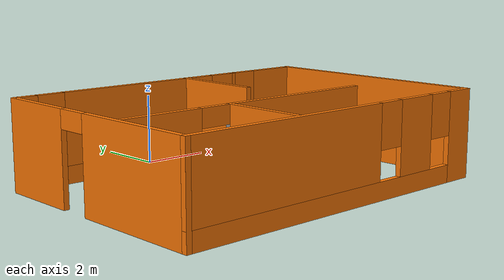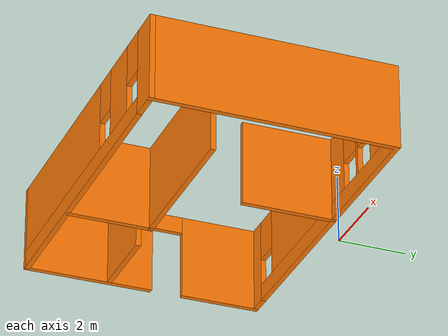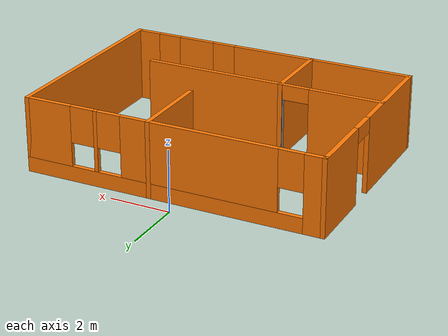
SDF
<?xml version='1.0'?>
<sdf version='1.6'>
  <model name='Building1'>
    <pose frame=''>0.275 -4.00475 0 0 -0 0</pose>
    <link name='Wall_0'>
      <pose frame=''>0 3.42475 0 0 -0 0</pose>
      <visual name='Wall_0_Visual_0'>
        <pose frame=''>-4.65298 0 1.25 0 -0 0</pose>
        <geometry>
          <box>
            <size>0.694035 0.15 2.5</size>
          </box>
        </geometry>
        <material>
          <script>
            <uri>file://media/materials/scripts/gazebo.material</uri>
            <name>Gazebo/Grey</name>
          </script>
          <ambient>0.996078 0.47451 0.0196078 1</ambient>
        </material>
        <meta>
          <layer>0</layer>
        </meta>
      </visual>
      <collision name='Wall_0_Collision_0'>
        <geometry>
          <box>
            <size>0.694035 0.15 2.5</size>
          </box>
        </geometry>
        <pose frame=''>-4.65298 0 1.25 0 -0 0</pose>
      </collision>
      <visual name='Wall_0_Visual_1'>
        <pose frame=''>0.347017 0 0.25 0 -0 0</pose>
        <geometry>
          <box>
            <size>9.30597 0.15 0.5</size>
          </box>
        </geometry>
        <material>
          <script>
            <uri>file://media/materials/scripts/gazebo.material</uri>
            <name>Gazebo/Grey</name>
          </script>
          <ambient>0.996078 0.47451 0.0196078 1</ambient>
        </material>
        <meta>
          <layer>0</layer>
        </meta>
      </visual>
      <collision name='Wall_0_Collision_1'>
        <geometry>
          <box>
            <size>9.30597 0.15 0.5</size>
          </box>
        </geometry>
        <pose frame=''>0.347017 0 0.25 0 -0 0</pose>
      </collision>
      <visual name='Wall_0_Visual_2'>
        <pose frame=''>-0.93034 0 1.5 0 -0 0</pose>
        <geometry>
          <box>
            <size>5.15125 0.15 2</size>
          </box>
        </geometry>
        <material>
          <script>
            <uri>file://media/materials/scripts/gazebo.material</uri>
            <name>Gazebo/Grey</name>
          </script>
          <ambient>0.996078 0.47451 0.0196078 1</ambient>
        </material>
        <meta>
          <layer>0</layer>
        </meta>
      </visual>
      <collision name='Wall_0_Collision_2'>
        <geometry>
          <box>
            <size>5.15125 0.15 2</size>
          </box>
        </geometry>
        <pose frame=''>-0.93034 0 1.5 0 -0 0</pose>
      </collision>
      <visual name='Wall_0_Visual_3'>
        <pose frame=''>2.50816 0 1.5 0 -0 0</pose>
        <geometry>
          <box>
            <size>0.12575 0.15 2</size>
          </box>
        </geometry>
        <material>
          <script>
            <uri>file://media/materials/scripts/gazebo.material</uri>
            <name>Gazebo/Grey</name>
          </script>
          <ambient>0.996078 0.47451 0.0196078 1</ambient>
        </material>
        <meta>
          <layer>0</layer>
        </meta>
      </visual>
      <collision name='Wall_0_Collision_3'>
        <geometry>
          <box>
            <size>0.12575 0.15 2</size>
          </box>
        </geometry>
        <pose frame=''>2.50816 0 1.5 0 -0 0</pose>
      </collision>
      <visual name='Wall_0_Visual_4'>
        <pose frame=''>4.18552 0 1.5 0 -0 0</pose>
        <geometry>
          <box>
            <size>1.62896 0.15 2</size>
          </box>
        </geometry>
        <material>
          <script>
            <uri>file://media/materials/scripts/gazebo.material</uri>
            <name>Gazebo/Grey</name>
          </script>
          <ambient>0.996078 0.47451 0.0196078 1</ambient>
        </material>
        <meta>
          <layer>0</layer>
        </meta>
      </visual>
      <collision name='Wall_0_Collision_4'>
        <geometry>
          <box>
            <size>1.62896 0.15 2</size>
          </box>
        </geometry>
        <pose frame=''>4.18552 0 1.5 0 -0 0</pose>
      </collision>
      <visual name='Wall_0_Visual_5'>
        <pose frame=''>-3.90597 0 1.9 0 -0 0</pose>
        <geometry>
          <box>
            <size>0.8 0.15 1.2</size>
          </box>
        </geometry>
        <material>
          <script>
            <uri>file://media/materials/scripts/gazebo.material</uri>
            <name>Gazebo/Grey</name>
          </script>
          <ambient>0.996078 0.47451 0.0196078 1</ambient>
        </material>
        <meta>
          <layer>0</layer>
        </meta>
      </visual>
      <collision name='Wall_0_Collision_5'>
        <geometry>
          <box>
            <size>0.8 0.15 1.2</size>
          </box>
        </geometry>
        <pose frame=''>-3.90597 0 1.9 0 -0 0</pose>
      </collision>
      <visual name='Wall_0_Visual_6'>
        <pose frame=''>2.04528 0 1.9 0 -0 0</pose>
        <geometry>
          <box>
            <size>0.8 0.15 1.2</size>
          </box>
        </geometry>
        <material>
          <script>
            <uri>file://media/materials/scripts/gazebo.material</uri>
            <name>Gazebo/Grey</name>
          </script>
          <ambient>0.996078 0.47451 0.0196078 1</ambient>
        </material>
        <meta>
          <layer>0</layer>
        </meta>
      </visual>
      <collision name='Wall_0_Collision_6'>
        <geometry>
          <box>
            <size>0.8 0.15 1.2</size>
          </box>
        </geometry>
        <pose frame=''>2.04528 0 1.9 0 -0 0</pose>
      </collision>
      <visual name='Wall_0_Visual_7'>
        <pose frame=''>2.97104 0 1.9 0 -0 0</pose>
        <geometry>
          <box>
            <size>0.8 0.15 1.2</size>
          </box>
        </geometry>
        <material>
          <script>
            <uri>file://media/materials/scripts/gazebo.material</uri>
            <name>Gazebo/Grey</name>
          </script>
          <ambient>0.996078 0.47451 0.0196078 1</ambient>
        </material>
        <meta>
          <layer>0</layer>
        </meta>
      </visual>
      <collision name='Wall_0_Collision_7'>
        <geometry>
          <box>
            <size>0.8 0.15 1.2</size>
          </box>
        </geometry>
        <pose frame=''>2.97104 0 1.9 0 -0 0</pose>
      </collision>
    </link>
    <link name='Wall_1'>
      <collision name='Wall_1_Collision'>
        <geometry>
          <box>
            <size>7 0.15 2.5</size>
          </box>
        </geometry>
        <pose frame=''>0 0 1.25 0 -0 0</pose>
      </collision>
      <visual name='Wall_1_Visual'>
        <pose frame=''>0 0 1.25 0 -0 0</pose>
        <geometry>
          <box>
            <size>7 0.15 2.5</size>
          </box>
        </geometry>
        <material>
          <script>
            <uri>file://media/materials/scripts/gazebo.material</uri>
            <name>Gazebo/Grey</name>
          </script>
          <ambient>0.996078 0.47451 0.0196078 1</ambient>
        </material>
        <meta>
          <layer>0</layer>
        </meta>
      </visual>
      <pose frame=''>4.925 -0.000249 0 0 0 -1.5708</pose>
    </link>
    <link name='Wall_11'>
      <collision name='Wall_11_Collision'>
        <geometry>
          <box>
            <size>2.75 0.15 2.5</size>
          </box>
        </geometry>
        <pose frame=''>0 0 1.25 0 -0 0</pose>
      </collision>
      <visual name='Wall_11_Visual'>
        <pose frame=''>0 0 1.25 0 -0 0</pose>
        <geometry>
          <box>
            <size>2.75 0.15 2.5</size>
          </box>
        </geometry>
        <material>
          <script>
            <uri>file://media/materials/scripts/gazebo.material</uri>
            <name>Gazebo/Grey</name>
          </script>
          <ambient>0.996078 0.47451 0.0196078 1</ambient>
        </material>
        <meta>
          <layer>0</layer>
        </meta>
      </visual>
      <pose frame=''>0.709534 2.12525 0 0 0 -1.5708</pose>
    </link>
    <link name='Wall_2'>
      <pose frame=''>0 -3.42525 0 0 -0 3.14159</pose>
      <visual name='Wall_2_Visual_0'>
        <pose frame=''>-4.5492 0 1.25 0 -0 0</pose>
        <geometry>
          <box>
            <size>0.90159 0.15 2.5</size>
          </box>
        </geometry>
        <material>
          <script>
            <uri>file://media/materials/scripts/gazebo.material</uri>
            <name>Gazebo/Grey</name>
          </script>
          <ambient>0.996078 0.47451 0.0196078 1</ambient>
        </material>
        <meta>
          <layer>0</layer>
        </meta>
      </visual>
      <collision name='Wall_2_Collision_0'>
        <geometry>
          <box>
            <size>0.90159 0.15 2.5</size>
          </box>
        </geometry>
        <pose frame=''>-4.5492 0 1.25 0 -0 0</pose>
      </collision>
      <visual name='Wall_2_Visual_1'>
        <pose frame=''>0.450795 0 0.25 0 -0 0</pose>
        <geometry>
          <box>
            <size>9.09841 0.15 0.5</size>
          </box>
        </geometry>
        <material>
          <script>
            <uri>file://media/materials/scripts/gazebo.material</uri>
            <name>Gazebo/Grey</name>
          </script>
          <ambient>0.996078 0.47451 0.0196078 1</ambient>
        </material>
        <meta>
          <layer>0</layer>
        </meta>
      </visual>
      <collision name='Wall_2_Collision_1'>
        <geometry>
          <box>
            <size>9.09841 0.15 0.5</size>
          </box>
        </geometry>
        <pose frame=''>0.450795 0 0.25 0 -0 0</pose>
      </collision>
      <visual name='Wall_2_Visual_2'>
        <pose frame=''>-2.66686 0 1.5 0 -0 0</pose>
        <geometry>
          <box>
            <size>1.2631 0.15 2</size>
          </box>
        </geometry>
        <material>
          <script>
            <uri>file://media/materials/scripts/gazebo.material</uri>
            <name>Gazebo/Grey</name>
          </script>
          <ambient>0.996078 0.47451 0.0196078 1</ambient>
        </material>
        <meta>
          <layer>0</layer>
        </meta>
      </visual>
      <collision name='Wall_2_Collision_2'>
        <geometry>
          <box>
            <size>1.2631 0.15 2</size>
          </box>
        </geometry>
        <pose frame=''>-2.66686 0 1.5 0 -0 0</pose>
      </collision>
      <visual name='Wall_2_Visual_3'>
        <pose frame=''>1.88234 0 1.5 0 -0 0</pose>
        <geometry>
          <box>
            <size>6.23531 0.15 2</size>
          </box>
        </geometry>
        <material>
          <script>
            <uri>file://media/materials/scripts/gazebo.material</uri>
            <name>Gazebo/Grey</name>
          </script>
          <ambient>0.996078 0.47451 0.0196078 1</ambient>
        </material>
        <meta>
          <layer>0</layer>
        </meta>
      </visual>
      <collision name='Wall_2_Collision_3'>
        <geometry>
          <box>
            <size>6.23531 0.15 2</size>
          </box>
        </geometry>
        <pose frame=''>1.88234 0 1.5 0 -0 0</pose>
      </collision>
      <visual name='Wall_2_Visual_4'>
        <pose frame=''>-3.69841 0 1.9 0 -0 0</pose>
        <geometry>
          <box>
            <size>0.8 0.15 1.2</size>
          </box>
        </geometry>
        <material>
          <script>
            <uri>file://media/materials/scripts/gazebo.material</uri>
            <name>Gazebo/Grey</name>
          </script>
          <ambient>0.996078 0.47451 0.0196078 1</ambient>
        </material>
        <meta>
          <layer>0</layer>
        </meta>
      </visual>
      <collision name='Wall_2_Collision_4'>
        <geometry>
          <box>
            <size>0.8 0.15 1.2</size>
          </box>
        </geometry>
        <pose frame=''>-3.69841 0 1.9 0 -0 0</pose>
      </collision>
      <visual name='Wall_2_Visual_5'>
        <pose frame=''>-1.63531 0 1.9 0 -0 0</pose>
        <geometry>
          <box>
            <size>0.8 0.15 1.2</size>
          </box>
        </geometry>
        <material>
          <script>
            <uri>file://media/materials/scripts/gazebo.material</uri>
            <name>Gazebo/Grey</name>
          </script>
          <ambient>0.996078 0.47451 0.0196078 1</ambient>
        </material>
        <meta>
          <layer>0</layer>
        </meta>
      </visual>
      <collision name='Wall_2_Collision_5'>
        <geometry>
          <box>
            <size>0.8 0.15 1.2</size>
          </box>
        </geometry>
        <pose frame=''>-1.63531 0 1.9 0 -0 0</pose>
      </collision>
    </link>
    <link name='Wall_3'>
      <pose frame=''>-4.925 -0.000249 0 0 -0 1.5708</pose>
      <visual name='Wall_3_Visual_0'>
        <pose frame=''>-1.62343 0 1.25 0 -0 0</pose>
        <geometry>
          <box>
            <size>3.75313 0.15 2.5</size>
          </box>
        </geometry>
        <material>
          <script>
            <uri>file://media/materials/scripts/gazebo.material</uri>
            <name>Gazebo/Grey</name>
          </script>
          <ambient>0.996078 0.47451 0.0196078 1</ambient>
        </material>
        <meta>
          <layer>0</layer>
        </meta>
      </visual>
      <collision name='Wall_3_Collision_0'>
        <geometry>
          <box>
            <size>3.75313 0.15 2.5</size>
          </box>
        </geometry>
        <pose frame=''>-1.62343 0 1.25 0 -0 0</pose>
      </collision>
      <visual name='Wall_3_Visual_1'>
        <pose frame=''>2.32657 0 1.25 0 -0 0</pose>
        <geometry>
          <box>
            <size>2.34687 0.15 2.5</size>
          </box>
        </geometry>
        <material>
          <script>
            <uri>file://media/materials/scripts/gazebo.material</uri>
            <name>Gazebo/Grey</name>
          </script>
          <ambient>0.996078 0.47451 0.0196078 1</ambient>
        </material>
        <meta>
          <layer>0</layer>
        </meta>
      </visual>
      <collision name='Wall_3_Collision_1'>
        <geometry>
          <box>
            <size>2.34687 0.15 2.5</size>
          </box>
        </geometry>
        <pose frame=''>2.32657 0 1.25 0 -0 0</pose>
      </collision>
      <visual name='Wall_3_Visual_2'>
        <pose frame=''>0.703131 0 2.25 0 -0 0</pose>
        <geometry>
          <box>
            <size>0.9 0.15 0.5</size>
          </box>
        </geometry>
        <material>
          <script>
            <uri>file://media/materials/scripts/gazebo.material</uri>
            <name>Gazebo/Grey</name>
          </script>
          <ambient>0.996078 0.47451 0.0196078 1</ambient>
        </material>
        <meta>
          <layer>0</layer>
        </meta>
      </visual>
      <collision name='Wall_3_Collision_2'>
        <geometry>
          <box>
            <size>0.9 0.15 0.5</size>
          </box>
        </geometry>
        <pose frame=''>0.703131 0 2.25 0 -0 0</pose>
      </collision>
    </link>
    <link name='Wall_5'>
      <pose frame=''>-3.22749 -1.01571 0 0 -0 0</pose>
      <visual name='Wall_5_Visual_0'>
        <pose frame=''>-0.520098 0 1.25 0 -0 0</pose>
        <geometry>
          <box>
            <size>2.4598 0.15 2.5</size>
          </box>
        </geometry>
        <material>
          <script>
            <uri>file://media/materials/scripts/gazebo.material</uri>
            <name>Gazebo/Grey</name>
          </script>
          <ambient>0.996078 0.47451 0.0196078 1</ambient>
        </material>
        <meta>
          <layer>0</layer>
        </meta>
      </visual>
      <collision name='Wall_5_Collision_0'>
        <geometry>
          <box>
            <size>2.4598 0.15 2.5</size>
          </box>
        </geometry>
        <pose frame=''>-0.520098 0 1.25 0 -0 0</pose>
      </collision>
      <visual name='Wall_5_Visual_1'>
        <pose frame=''>1.6799 0 1.25 0 -0 0</pose>
        <geometry>
          <box>
            <size>0.140195 0.15 2.5</size>
          </box>
        </geometry>
        <material>
          <script>
            <uri>file://media/materials/scripts/gazebo.material</uri>
            <name>Gazebo/Grey</name>
          </script>
          <ambient>0.996078 0.47451 0.0196078 1</ambient>
        </material>
        <meta>
          <layer>0</layer>
        </meta>
      </visual>
      <collision name='Wall_5_Collision_1'>
        <geometry>
          <box>
            <size>0.140195 0.15 2.5</size>
          </box>
        </geometry>
        <pose frame=''>1.6799 0 1.25 0 -0 0</pose>
      </collision>
      <visual name='Wall_5_Visual_2'>
        <pose frame=''>1.1598 0 2.25 0 -0 0</pose>
        <geometry>
          <box>
            <size>0.9 0.15 0.5</size>
          </box>
        </geometry>
        <material>
          <script>
            <uri>file://media/materials/scripts/gazebo.material</uri>
            <name>Gazebo/Grey</name>
          </script>
          <ambient>0.996078 0.47451 0.0196078 1</ambient>
        </material>
        <meta>
          <layer>0</layer>
        </meta>
      </visual>
      <collision name='Wall_5_Collision_2'>
        <geometry>
          <box>
            <size>0.9 0.15 0.5</size>
          </box>
        </geometry>
        <pose frame=''>1.1598 0 2.25 0 -0 0</pose>
      </collision>
    </link>
    <link name='Wall_6'>
      <collision name='Wall_6_Collision'>
        <geometry>
          <box>
            <size>0.16 0.15 2.5</size>
          </box>
        </geometry>
        <pose frame=''>0 0 1.25 0 -0 0</pose>
      </collision>
      <visual name='Wall_6_Visual'>
        <pose frame=''>0 0 1.25 0 -0 0</pose>
        <geometry>
          <box>
            <size>0.16 0.15 2.5</size>
          </box>
        </geometry>
        <material>
          <script>
            <uri>file://media/materials/scripts/gazebo.material</uri>
            <name>Gazebo/Grey</name>
          </script>
          <ambient>1 1 1 1</ambient>
        </material>
        <meta>
          <layer>0</layer>
        </meta>
      </visual>
      <pose frame=''>-1.5475 -1.01571 0 0 -0 0</pose>
    </link>
    <link name='Wall_7'>
      <collision name='Wall_7_Collision'>
        <geometry>
          <box>
            <size>2.5 0.15 2.5</size>
          </box>
        </geometry>
        <pose frame=''>0 0 1.25 0 -0 0</pose>
      </collision>
      <visual name='Wall_7_Visual'>
        <pose frame=''>0 0 1.25 0 -0 0</pose>
        <geometry>
          <box>
            <size>2.5 0.15 2.5</size>
          </box>
        </geometry>
        <material>
          <script>
            <uri>file://media/materials/scripts/gazebo.material</uri>
            <name>Gazebo/Grey</name>
          </script>
          <ambient>0.996078 0.47451 0.0196078 1</ambient>
        </material>
        <meta>
          <layer>0</layer>
        </meta>
      </visual>
      <pose frame=''>-1.54249 -2.19071 0 0 0 -1.5708</pose>
    </link>
    <link name='Wall_9'>
      <collision name='Wall_9_Collision'>
        <geometry>
          <box>
            <size>4.75 0.15 2.5</size>
          </box>
        </geometry>
        <pose frame=''>0 0 1.25 0 -0 0</pose>
      </collision>
      <visual name='Wall_9_Visual'>
        <pose frame=''>0 0 1.25 0 -0 0</pose>
        <geometry>
          <box>
            <size>4.75 0.15 2.5</size>
          </box>
        </geometry>
        <material>
          <script>
            <uri>file://media/materials/scripts/gazebo.material</uri>
            <name>Gazebo/Grey</name>
          </script>
          <ambient>0.996078 0.47451 0.0196078 1</ambient>
        </material>
        <meta>
          <layer>0</layer>
        </meta>
      </visual>
      <pose frame=''>0.757505 -1.01571 0 0 -0 0</pose>
    </link>
    <static>1</static>
  </model>
</sdf>
